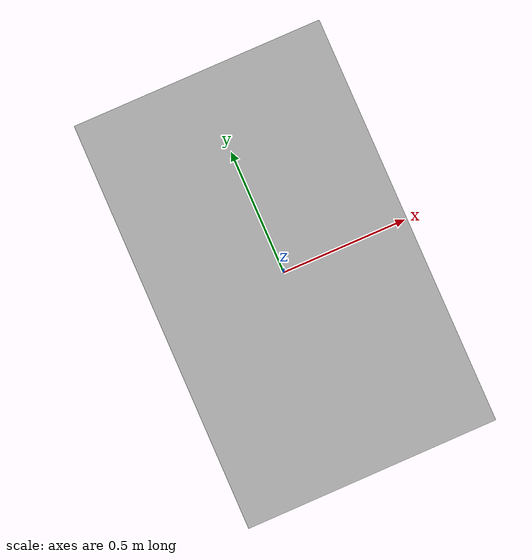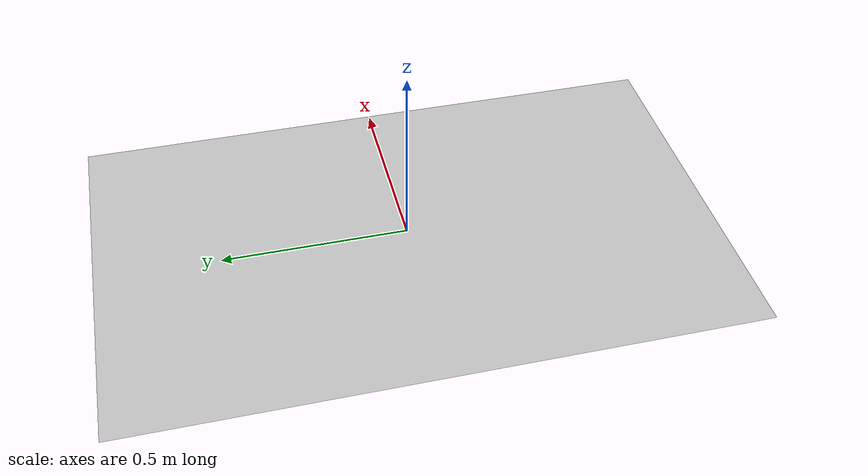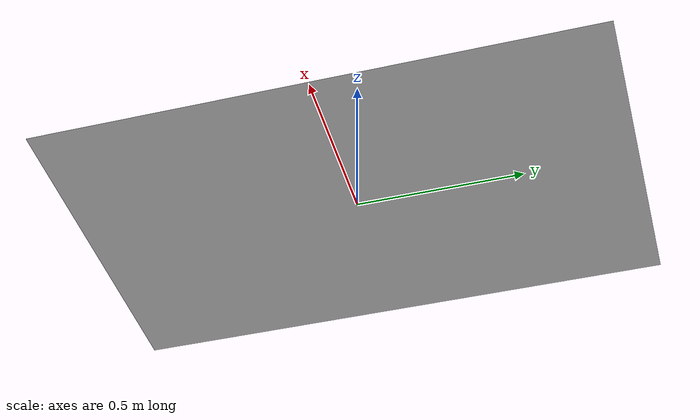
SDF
<?xml version='1.0'?>
<sdf version='1.7'>
  <model name='banner_2'>
    <link name='link'>
      <pose>0 0 0 0 -0 0</pose>
      <visual name='visual'>
        <geometry>
          <box>
            <size>1.01955 1.662762 0</size>
          </box>
        </geometry>
        <material>
          <script>
            <uri>model://banner_2/materials/scripts</uri>
            <uri>model://banner_2/materials/textures</uri>
            <name>ban2/Diffuse</name>
          </script>
          <shader type='pixel'/>
        </material>
        <pose>0 0 0 0 -0 0</pose>
        <transparency>0</transparency>
        <cast_shadows>0</cast_shadows>
      </visual>
    </link>
    <static>1</static>
  </model>
</sdf>
